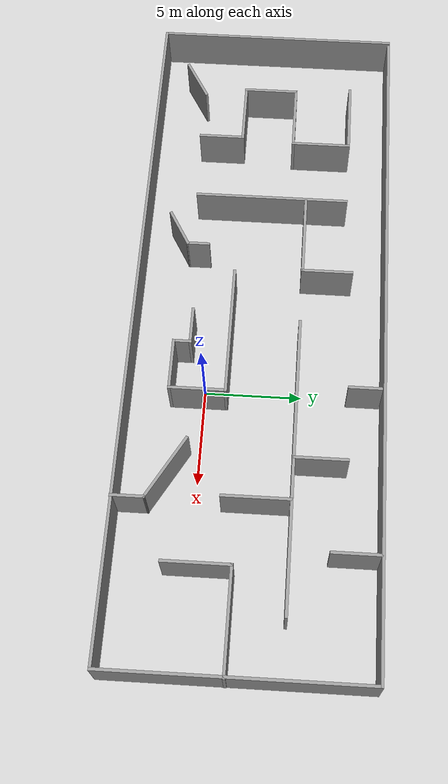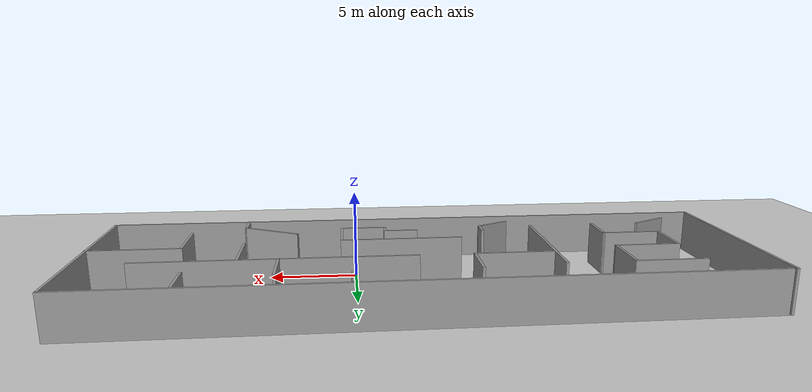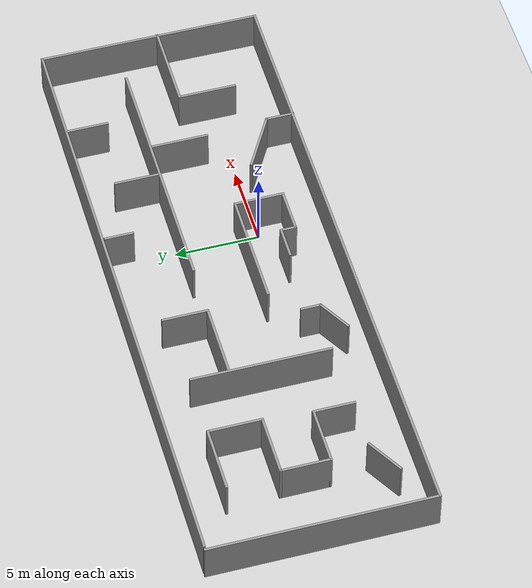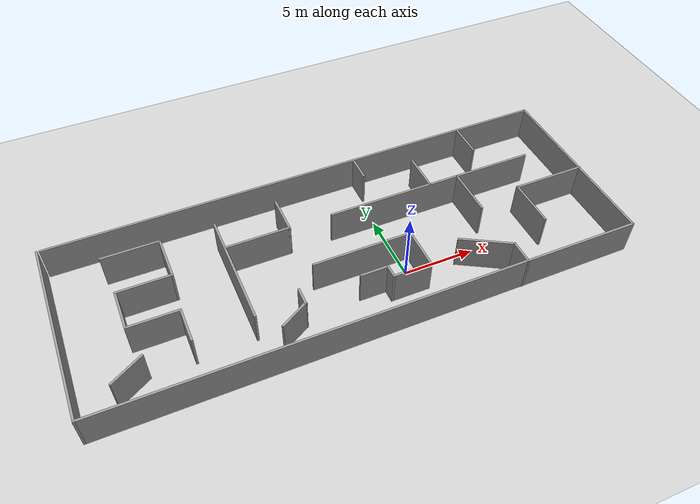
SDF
<?xml version='1.0'?>
<sdf version='1.6'>
<world name="my_map">
    <!-- A global light source -->
    <include>
      <uri>model://sun</uri>
    </include>
    <!-- A ground plane -->
    <include>
      <uri>model://ground_plane</uri>
    </include>
  <model name='map4_world'>
    <pose frame=''>-3.62773 2.60838 0 0 -0 0</pose>
    <link name='Wall_0'>
      <collision name='Wall_0_Collision'>
        <geometry>
          <box>
            <size>36.5 0.15 2.5</size>
          </box>
        </geometry>
        <pose frame=''>0 0 1.25 0 -0 0</pose>
      </collision>
      <visual name='Wall_0_Visual'>
        <pose frame=''>0 0 1.25 0 -0 0</pose>
        <geometry>
          <box>
            <size>36.5 0.15 2.5</size>
          </box>
        </geometry>
        <material>
          <script>
            <uri>file://media/materials/scripts/gazebo.material</uri>
            <name>Gazebo/Grey</name>
          </script>
          <ambient>1 1 1 1</ambient>
        </material>
        <meta>
          <layer>0</layer>
        </meta>
      </visual>
      <pose frame=''>0.109149 6.56175 0 0 -0 0</pose>
    </link>
    <link name='Wall_1'>
      <collision name='Wall_1_Collision'>
        <geometry>
          <box>
            <size>13.25 0.15 2.5</size>
          </box>
        </geometry>
        <pose frame=''>0 0 1.25 0 -0 0</pose>
      </collision>
      <visual name='Wall_1_Visual'>
        <pose frame=''>0 0 1.25 0 -0 0</pose>
        <geometry>
          <box>
            <size>13.25 0.15 2.5</size>
          </box>
        </geometry>
        <material>
          <script>
            <uri>file://media/materials/scripts/gazebo.material</uri>
            <name>Gazebo/Grey</name>
          </script>
          <ambient>1 1 1 1</ambient>
        </material>
        <meta>
          <layer>0</layer>
        </meta>
      </visual>
      <pose frame=''>18.2842 0.011748 0 0 -0 -1.5708</pose>
    </link>
    <link name='Wall_10'>
      <collision name='Wall_10_Collision'>
        <geometry>
          <box>
            <size>2.5 0.15 2.5</size>
          </box>
        </geometry>
        <pose frame=''>0 0 1.25 0 -0 0</pose>
      </collision>
      <visual name='Wall_10_Visual'>
        <pose frame=''>0 0 1.25 0 -0 0</pose>
        <geometry>
          <box>
            <size>2.5 0.15 2.5</size>
          </box>
        </geometry>
        <material>
          <script>
            <uri>file://media/materials/scripts/gazebo.material</uri>
            <name>Gazebo/Grey</name>
          </script>
          <ambient>1 1 1 1</ambient>
        </material>
        <meta>
          <layer>0</layer>
        </meta>
      </visual>
      <pose frame=''>-11.0696 -2.74988 0 0 -0 -1.5708</pose>
    </link>
    <link name='Wall_12'>
      <collision name='Wall_12_Collision'>
        <geometry>
          <box>
            <size>8.25 0.15 2.5</size>
          </box>
        </geometry>
        <pose frame=''>0 0 1.25 0 -0 0</pose>
      </collision>
      <visual name='Wall_12_Visual'>
        <pose frame=''>0 0 1.25 0 -0 0</pose>
        <geometry>
          <box>
            <size>8.25 0.15 2.5</size>
          </box>
        </geometry>
        <material>
          <script>
            <uri>file://media/materials/scripts/gazebo.material</uri>
            <name>Gazebo/Grey</name>
          </script>
          <ambient>1 1 1 1</ambient>
        </material>
        <meta>
          <layer>0</layer>
        </meta>
      </visual>
      <pose frame=''>-7.13273 0.2786 0 0 -0 -1.5708</pose>
    </link>
    <link name='Wall_14'>
      <collision name='Wall_14_Collision'>
        <geometry>
          <box>
            <size>4.5 0.15 2.5</size>
          </box>
        </geometry>
        <pose frame=''>0 0 1.25 0 -0 0</pose>
      </collision>
      <visual name='Wall_14_Visual'>
        <pose frame=''>0 0 1.25 0 -0 0</pose>
        <geometry>
          <box>
            <size>4.5 0.15 2.5</size>
          </box>
        </geometry>
        <material>
          <script>
            <uri>file://media/materials/scripts/gazebo.material</uri>
            <name>Gazebo/Grey</name>
          </script>
          <ambient>1 1 1 1</ambient>
        </material>
        <meta>
          <layer>0</layer>
        </meta>
      </visual>
      <pose frame=''>-4.86468 2.14198 0 0 -0 0</pose>
    </link>
    <link name='Wall_15'>
      <collision name='Wall_15_Collision'>
        <geometry>
          <box>
            <size>2.75 0.15 2.5</size>
          </box>
        </geometry>
        <pose frame=''>0 0 1.25 0 -0 0</pose>
      </collision>
      <visual name='Wall_15_Visual'>
        <pose frame=''>0 0 1.25 0 -0 0</pose>
        <geometry>
          <box>
            <size>2.75 0.15 2.5</size>
          </box>
        </geometry>
        <material>
          <script>
            <uri>file://media/materials/scripts/gazebo.material</uri>
            <name>Gazebo/Grey</name>
          </script>
          <ambient>1 1 1 1</ambient>
        </material>
        <meta>
          <layer>0</layer>
        </meta>
      </visual>
      <pose frame=''>-2.68968 3.44198 0 0 -0 1.5708</pose>
    </link>
    <link name='Wall_17'>
      <collision name='Wall_17_Collision'>
        <geometry>
          <box>
            <size>15.25 0.15 2.5</size>
          </box>
        </geometry>
        <pose frame=''>0 0 1.25 0 -0 0</pose>
      </collision>
      <visual name='Wall_17_Visual'>
        <pose frame=''>0 0 1.25 0 -0 0</pose>
        <geometry>
          <box>
            <size>15.25 0.15 2.5</size>
          </box>
        </geometry>
        <material>
          <script>
            <uri>file://media/materials/scripts/gazebo.material</uri>
            <name>Gazebo/Grey</name>
          </script>
          <ambient>1 1 1 1</ambient>
        </material>
        <meta>
          <layer>0</layer>
        </meta>
      </visual>
      <pose frame=''>7.90762 2.14198 0 0 -0 0</pose>
    </link>
    <link name='Wall_19'>
      <collision name='Wall_19_Collision'>
        <geometry>
          <box>
            <size>1.75 0.15 2.5</size>
          </box>
        </geometry>
        <pose frame=''>0 0 1.25 0 -0 0</pose>
      </collision>
      <visual name='Wall_19_Visual'>
        <pose frame=''>0 0 1.25 0 -0 0</pose>
        <geometry>
          <box>
            <size>1.75 0.15 2.5</size>
          </box>
        </geometry>
        <material>
          <script>
            <uri>file://media/materials/scripts/gazebo.material</uri>
            <name>Gazebo/Grey</name>
          </script>
          <ambient>1 1 1 1</ambient>
        </material>
        <meta>
          <layer>0</layer>
        </meta>
      </visual>
      <pose frame=''>3.89344 5.57565 0 0 -0 -1.5708</pose>
    </link>
    <link name='Wall_2'>
      <collision name='Wall_2_Collision'>
        <geometry>
          <box>
            <size>36.75 0.15 2.5</size>
          </box>
        </geometry>
        <pose frame=''>0 0 1.25 0 -0 0</pose>
      </collision>
      <visual name='Wall_2_Visual'>
        <pose frame=''>0 0 1.25 0 -0 0</pose>
        <geometry>
          <box>
            <size>36.75 0.15 2.5</size>
          </box>
        </geometry>
        <material>
          <script>
            <uri>file://media/materials/scripts/gazebo.material</uri>
            <name>Gazebo/Grey</name>
          </script>
          <ambient>1 1 1 1</ambient>
        </material>
        <meta>
          <layer>0</layer>
        </meta>
      </visual>
      <pose frame=''>-0.015851 -6.53825 0 0 -0 3.14159</pose>
    </link>
    <link name='Wall_21'>
      <collision name='Wall_21_Collision'>
        <geometry>
          <box>
            <size>2.75 0.15 2.5</size>
          </box>
        </geometry>
        <pose frame=''>0 0 1.25 0 -0 0</pose>
      </collision>
      <visual name='Wall_21_Visual'>
        <pose frame=''>0 0 1.25 0 -0 0</pose>
        <geometry>
          <box>
            <size>2.75 0.15 2.5</size>
          </box>
        </geometry>
        <material>
          <script>
            <uri>file://media/materials/scripts/gazebo.material</uri>
            <name>Gazebo/Grey</name>
          </script>
          <ambient>1 1 1 1</ambient>
        </material>
        <meta>
          <layer>0</layer>
        </meta>
      </visual>
      <pose frame=''>7.75492 3.4885 0 0 -0 1.5708</pose>
    </link>
    <link name='Wall_23'>
      <collision name='Wall_23_Collision'>
        <geometry>
          <box>
            <size>2.5 0.15 2.5</size>
          </box>
        </geometry>
        <pose frame=''>0 0 1.25 0 -0 0</pose>
      </collision>
      <visual name='Wall_23_Visual'>
        <pose frame=''>0 0 1.25 0 -0 0</pose>
        <geometry>
          <box>
            <size>2.5 0.15 2.5</size>
          </box>
        </geometry>
        <material>
          <script>
            <uri>file://media/materials/scripts/gazebo.material</uri>
            <name>Gazebo/Grey</name>
          </script>
          <ambient>1 1 1 1</ambient>
        </material>
        <meta>
          <layer>0</layer>
        </meta>
      </visual>
      <pose frame=''>12.3608 5.2937 0 0 -0 -1.5708</pose>
    </link>
    <link name='Wall_25'>
      <collision name='Wall_25_Collision'>
        <geometry>
          <box>
            <size>5.25 0.15 2.5</size>
          </box>
        </geometry>
        <pose frame=''>0 0 1.25 0 -0 0</pose>
      </collision>
      <visual name='Wall_25_Visual'>
        <pose frame=''>0 0 1.25 0 -0 0</pose>
        <geometry>
          <box>
            <size>5.25 0.15 2.5</size>
          </box>
        </geometry>
        <material>
          <script>
            <uri>file://media/materials/scripts/gazebo.material</uri>
            <name>Gazebo/Grey</name>
          </script>
          <ambient>1 1 1 1</ambient>
        </material>
        <meta>
          <layer>0</layer>
        </meta>
      </visual>
      <pose frame=''>15.7659 -0.509887 0 0 -0 3.14159</pose>
    </link>
    <link name='Wall_26'>
      <collision name='Wall_26_Collision'>
        <geometry>
          <box>
            <size>3.5 0.15 2.5</size>
          </box>
        </geometry>
        <pose frame=''>0 0 1.25 0 -0 0</pose>
      </collision>
      <visual name='Wall_26_Visual'>
        <pose frame=''>0 0 1.25 0 -0 0</pose>
        <geometry>
          <box>
            <size>3.5 0.15 2.5</size>
          </box>
        </geometry>
        <material>
          <script>
            <uri>file://media/materials/scripts/gazebo.material</uri>
            <name>Gazebo/Grey</name>
          </script>
          <ambient>1 1 1 1</ambient>
        </material>
        <meta>
          <layer>0</layer>
        </meta>
      </visual>
      <pose frame=''>13.2158 -2.18489 0 0 -0 -1.5708</pose>
    </link>
    <link name='Wall_28'>
      <collision name='Wall_28_Collision'>
        <geometry>
          <box>
            <size>3.5 0.15 2.5</size>
          </box>
        </geometry>
        <pose frame=''>0 0 1.25 0 -0 0</pose>
      </collision>
      <visual name='Wall_28_Visual'>
        <pose frame=''>0 0 1.25 0 -0 0</pose>
        <geometry>
          <box>
            <size>3.5 0.15 2.5</size>
          </box>
        </geometry>
        <material>
          <script>
            <uri>file://media/materials/scripts/gazebo.material</uri>
            <name>Gazebo/Grey</name>
          </script>
          <ambient>1 1 1 1</ambient>
        </material>
        <meta>
          <layer>0</layer>
        </meta>
      </visual>
      <pose frame=''>9.89502 0.420453 0 0 -0 -1.5708</pose>
    </link>
    <link name='Wall_3'>
      <collision name='Wall_3_Collision'>
        <geometry>
          <box>
            <size>13.25 0.15 2.5</size>
          </box>
        </geometry>
        <pose frame=''>0 0 1.25 0 -0 0</pose>
      </collision>
      <visual name='Wall_3_Visual'>
        <pose frame=''>0 0 1.25 0 -0 0</pose>
        <geometry>
          <box>
            <size>13.25 0.15 2.5</size>
          </box>
        </geometry>
        <material>
          <script>
            <uri>file://media/materials/scripts/gazebo.material</uri>
            <name>Gazebo/Grey</name>
          </script>
          <ambient>1 1 1 1</ambient>
        </material>
        <meta>
          <layer>0</layer>
        </meta>
      </visual>
      <pose frame=''>-18.3159 0.011748 0 0 -0 1.5708</pose>
    </link>
    <link name='Wall_30'>
      <collision name='Wall_30_Collision'>
        <geometry>
          <box>
            <size>7 0.15 2.5</size>
          </box>
        </geometry>
        <pose frame=''>0 0 1.25 0 -0 0</pose>
      </collision>
      <visual name='Wall_30_Visual'>
        <pose frame=''>0 0 1.25 0 -0 0</pose>
        <geometry>
          <box>
            <size>7 0.15 2.5</size>
          </box>
        </geometry>
        <material>
          <script>
            <uri>file://media/materials/scripts/gazebo.material</uri>
            <name>Gazebo/Grey</name>
          </script>
          <ambient>1 1 1 1</ambient>
        </material>
        <meta>
          <layer>0</layer>
        </meta>
      </visual>
      <pose frame=''>0.991185 -1.44036 0 0 -0 0</pose>
    </link>
    <link name='Wall_31'>
      <collision name='Wall_31_Collision'>
        <geometry>
          <box>
            <size>3 0.15 2.5</size>
          </box>
        </geometry>
        <pose frame=''>0 0 1.25 0 -0 0</pose>
      </collision>
      <visual name='Wall_31_Visual'>
        <pose frame=''>0 0 1.25 0 -0 0</pose>
        <geometry>
          <box>
            <size>3 0.15 2.5</size>
          </box>
        </geometry>
        <material>
          <script>
            <uri>file://media/materials/scripts/gazebo.material</uri>
            <name>Gazebo/Grey</name>
          </script>
          <ambient>1 1 1 1</ambient>
        </material>
        <meta>
          <layer>0</layer>
        </meta>
      </visual>
      <pose frame=''>4.41618 -2.86537 0 0 -0 -1.5708</pose>
    </link>
    <link name='Wall_32'>
      <collision name='Wall_32_Collision'>
        <geometry>
          <box>
            <size>2.75 0.15 2.5</size>
          </box>
        </geometry>
        <pose frame=''>0 0 1.25 0 -0 0</pose>
      </collision>
      <visual name='Wall_32_Visual'>
        <pose frame=''>0 0 1.25 0 -0 0</pose>
        <geometry>
          <box>
            <size>2.75 0.15 2.5</size>
          </box>
        </geometry>
        <material>
          <script>
            <uri>file://media/materials/scripts/gazebo.material</uri>
            <name>Gazebo/Grey</name>
          </script>
          <ambient>1 1 1 1</ambient>
        </material>
        <meta>
          <layer>0</layer>
        </meta>
      </visual>
      <pose frame=''>3.11619 -4.29037 0 0 -0 3.14159</pose>
    </link>
    <link name='Wall_33'>
      <collision name='Wall_33_Collision'>
        <geometry>
          <box>
            <size>1 0.15 2.5</size>
          </box>
        </geometry>
        <pose frame=''>0 0 1.25 0 -0 0</pose>
      </collision>
      <visual name='Wall_33_Visual'>
        <pose frame=''>0 0 1.25 0 -0 0</pose>
        <geometry>
          <box>
            <size>1 0.15 2.5</size>
          </box>
        </geometry>
        <material>
          <script>
            <uri>file://media/materials/scripts/gazebo.material</uri>
            <name>Gazebo/Grey</name>
          </script>
          <ambient>1 1 1 1</ambient>
        </material>
        <meta>
          <layer>0</layer>
        </meta>
      </visual>
      <pose frame=''>1.81618 -3.86537 0 0 -0 1.5708</pose>
    </link>
    <link name='Wall_34'>
      <collision name='Wall_34_Collision'>
        <geometry>
          <box>
            <size>2 0.15 2.5</size>
          </box>
        </geometry>
        <pose frame=''>0 0 1.25 0 -0 0</pose>
      </collision>
      <visual name='Wall_34_Visual'>
        <pose frame=''>0 0 1.25 0 -0 0</pose>
        <geometry>
          <box>
            <size>2 0.15 2.5</size>
          </box>
        </geometry>
        <material>
          <script>
            <uri>file://media/materials/scripts/gazebo.material</uri>
            <name>Gazebo/Grey</name>
          </script>
          <ambient>1 1 1 1</ambient>
        </material>
        <meta>
          <layer>0</layer>
        </meta>
      </visual>
      <pose frame=''>0.891185 -3.44036 0 0 -0 3.14159</pose>
    </link>
    <link name='Wall_36'>
      <collision name='Wall_36_Collision'>
        <geometry>
          <box>
            <size>2.25 0.15 2.5</size>
          </box>
        </geometry>
        <pose frame=''>0 0 1.25 0 -0 0</pose>
      </collision>
      <visual name='Wall_36_Visual'>
        <pose frame=''>0 0 1.25 0 -0 0</pose>
        <geometry>
          <box>
            <size>2.25 0.15 2.5</size>
          </box>
        </geometry>
        <material>
          <script>
            <uri>file://media/materials/scripts/gazebo.material</uri>
            <name>Gazebo/Grey</name>
          </script>
          <ambient>1 1 1 1</ambient>
        </material>
        <meta>
          <layer>0</layer>
        </meta>
      </visual>
      <pose frame=''>-4.92073 -4.59075 0 0 -0 0.523599</pose>
    </link>
    <link name='Wall_37'>
      <collision name='Wall_37_Collision'>
        <geometry>
          <box>
            <size>1.25 0.15 2.5</size>
          </box>
        </geometry>
        <pose frame=''>0 0 1.25 0 -0 0</pose>
      </collision>
      <visual name='Wall_37_Visual'>
        <pose frame=''>0 0 1.25 0 -0 0</pose>
        <geometry>
          <box>
            <size>1.25 0.15 2.5</size>
          </box>
        </geometry>
        <material>
          <script>
            <uri>file://media/materials/scripts/gazebo.material</uri>
            <name>Gazebo/Grey</name>
          </script>
          <ambient>1 1 1 1</ambient>
        </material>
        <meta>
          <layer>0</layer>
        </meta>
      </visual>
      <pose frame=''>-4.01141 -3.51575 0 0 -0 1.5708</pose>
    </link>
    <link name='Wall_39'>
      <collision name='Wall_39_Collision'>
        <geometry>
          <box>
            <size>2.5 0.15 2.5</size>
          </box>
        </geometry>
        <pose frame=''>0 0 1.25 0 -0 0</pose>
      </collision>
      <visual name='Wall_39_Visual'>
        <pose frame=''>0 0 1.25 0 -0 0</pose>
        <geometry>
          <box>
            <size>2.5 0.15 2.5</size>
          </box>
        </geometry>
        <material>
          <script>
            <uri>file://media/materials/scripts/gazebo.material</uri>
            <name>Gazebo/Grey</name>
          </script>
          <ambient>1 1 1 1</ambient>
        </material>
        <meta>
          <layer>0</layer>
        </meta>
      </visual>
      <pose frame=''>-14.9893 -4.44711 0 0 -0 -2.61799</pose>
    </link>
    <link name='Wall_41'>
      <collision name='Wall_41_Collision'>
        <geometry>
          <box>
            <size>3.75 0.15 2.5</size>
          </box>
        </geometry>
        <pose frame=''>0 0 1.25 0 -0 0</pose>
      </collision>
      <visual name='Wall_41_Visual'>
        <pose frame=''>0 0 1.25 0 -0 0</pose>
        <geometry>
          <box>
            <size>3.75 0.15 2.5</size>
          </box>
        </geometry>
        <material>
          <script>
            <uri>file://media/materials/scripts/gazebo.material</uri>
            <name>Gazebo/Grey</name>
          </script>
          <ambient>1 1 1 1</ambient>
        </material>
        <meta>
          <layer>0</layer>
        </meta>
      </visual>
      <pose frame=''>8.61591 -4.06175 0 0 -0 -0.523599</pose>
    </link>
    <link name='Wall_42'>
      <collision name='Wall_42_Collision'>
        <geometry>
          <box>
            <size>1.75 0.15 2.5</size>
          </box>
        </geometry>
        <pose frame=''>0 0 1.25 0 -0 0</pose>
      </collision>
      <visual name='Wall_42_Visual'>
        <pose frame=''>0 0 1.25 0 -0 0</pose>
        <geometry>
          <box>
            <size>1.75 0.15 2.5</size>
          </box>
        </geometry>
        <material>
          <script>
            <uri>file://media/materials/scripts/gazebo.material</uri>
            <name>Gazebo/Grey</name>
          </script>
          <ambient>1 1 1 1</ambient>
        </material>
        <meta>
          <layer>0</layer>
        </meta>
      </visual>
      <pose frame=''>10.1748 -5.76175 0 0 -0 -1.5708</pose>
    </link>
    <link name='Wall_5'>
      <collision name='Wall_5_Collision'>
        <geometry>
          <box>
            <size>4 0.15 2.5</size>
          </box>
        </geometry>
        <pose frame=''>0 0 1.25 0 -0 0</pose>
      </collision>
      <visual name='Wall_5_Visual'>
        <pose frame=''>0 0 1.25 0 -0 0</pose>
        <geometry>
          <box>
            <size>4 0.15 2.5</size>
          </box>
        </geometry>
        <material>
          <script>
            <uri>file://media/materials/scripts/gazebo.material</uri>
            <name>Gazebo/Grey</name>
          </script>
          <ambient>1 1 1 1</ambient>
        </material>
        <meta>
          <layer>0</layer>
        </meta>
      </visual>
      <pose frame=''>-12.7446 4.37512 0 0 -0 0</pose>
    </link>
    <link name='Wall_6'>
      <collision name='Wall_6_Collision'>
        <geometry>
          <box>
            <size>3.25 0.15 2.5</size>
          </box>
        </geometry>
        <pose frame=''>0 0 1.25 0 -0 0</pose>
      </collision>
      <visual name='Wall_6_Visual'>
        <pose frame=''>0 0 1.25 0 -0 0</pose>
        <geometry>
          <box>
            <size>3.25 0.15 2.5</size>
          </box>
        </geometry>
        <material>
          <script>
            <uri>file://media/materials/scripts/gazebo.material</uri>
            <name>Gazebo/Grey</name>
          </script>
          <ambient>1 1 1 1</ambient>
        </material>
        <meta>
          <layer>0</layer>
        </meta>
      </visual>
      <pose frame=''>-10.8196 2.82512 0 0 -0 -1.5708</pose>
    </link>
    <link name='Wall_7'>
      <collision name='Wall_7_Collision'>
        <geometry>
          <box>
            <size>3.75 0.15 2.5</size>
          </box>
        </geometry>
        <pose frame=''>0 0 1.25 0 -0 0</pose>
      </collision>
      <visual name='Wall_7_Visual'>
        <pose frame=''>0 0 1.25 0 -0 0</pose>
        <geometry>
          <box>
            <size>3.75 0.15 2.5</size>
          </box>
        </geometry>
        <material>
          <script>
            <uri>file://media/materials/scripts/gazebo.material</uri>
            <name>Gazebo/Grey</name>
          </script>
          <ambient>1 1 1 1</ambient>
        </material>
        <meta>
          <layer>0</layer>
        </meta>
      </visual>
      <pose frame=''>-12.6196 1.27513 0 0 -0 3.14159</pose>
    </link>
    <link name='Wall_8'>
      <collision name='Wall_8_Collision'>
        <geometry>
          <box>
            <size>3 0.15 2.5</size>
          </box>
        </geometry>
        <pose frame=''>0 0 1.25 0 -0 0</pose>
      </collision>
      <visual name='Wall_8_Visual'>
        <pose frame=''>0 0 1.25 0 -0 0</pose>
        <geometry>
          <box>
            <size>3 0.15 2.5</size>
          </box>
        </geometry>
        <material>
          <script>
            <uri>file://media/materials/scripts/gazebo.material</uri>
            <name>Gazebo/Grey</name>
          </script>
          <ambient>1 1 1 1</ambient>
        </material>
        <meta>
          <layer>0</layer>
        </meta>
      </visual>
      <pose frame=''>-14.4196 -0.149876 0 0 -0 -1.5708</pose>
    </link>
    <link name='Wall_9'>
      <collision name='Wall_9_Collision'>
        <geometry>
          <box>
            <size>3.5 0.15 2.5</size>
          </box>
        </geometry>
        <pose frame=''>0 0 1.25 0 -0 0</pose>
      </collision>
      <visual name='Wall_9_Visual'>
        <pose frame=''>0 0 1.25 0 -0 0</pose>
        <geometry>
          <box>
            <size>3.5 0.15 2.5</size>
          </box>
        </geometry>
        <material>
          <script>
            <uri>file://media/materials/scripts/gazebo.material</uri>
            <name>Gazebo/Grey</name>
          </script>
          <ambient>1 1 1 1</ambient>
        </material>
        <meta>
          <layer>0</layer>
        </meta>
      </visual>
      <pose frame=''>-12.7446 -1.57488 0 0 -0 0</pose>
    </link>
    <static>1</static>
  </model>
</world>
</sdf>
